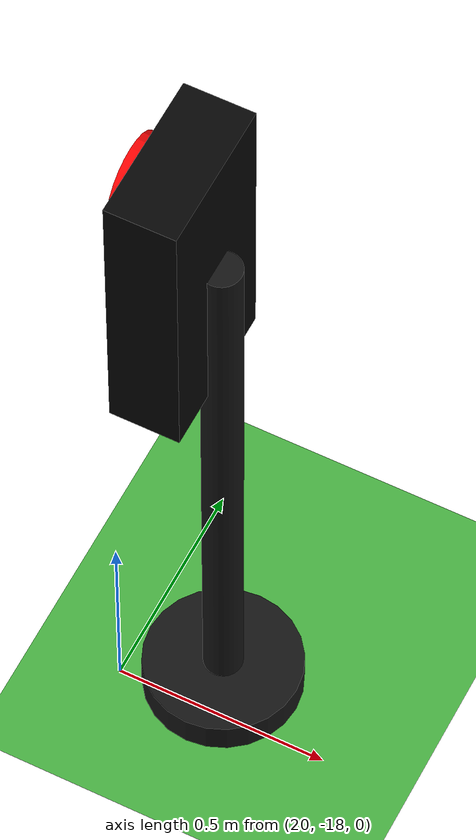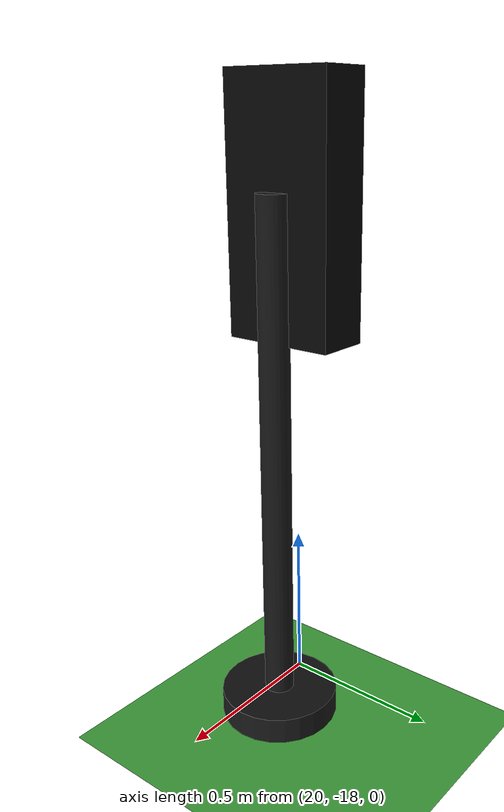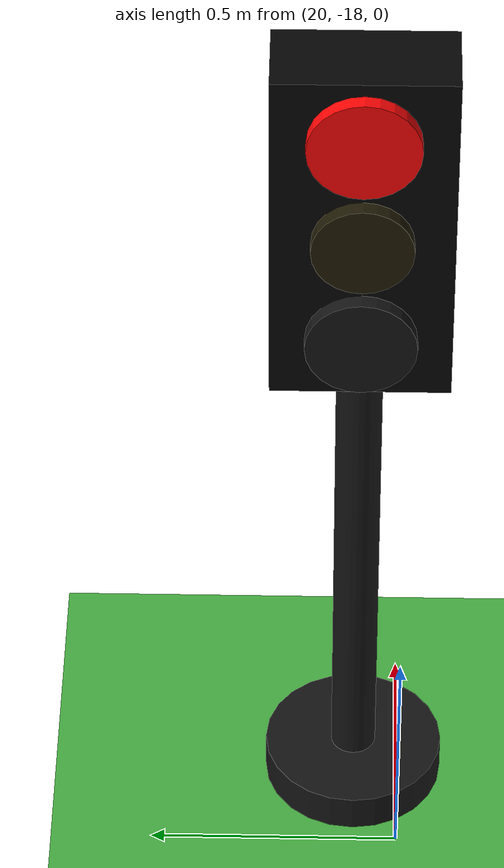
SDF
<sdf version="1.10">
 <world name="city_second">
  <model name="ground_plane">
   <static>true</static>
   <link name="link">
    <collision name="collision">
     <geometry><plane><normal>0 0 1</normal><size>45 46</size></plane></geometry>
    </collision>
    <visual name="visual">
     <geometry><plane><normal>0 0 1</normal><size>45 46</size></plane></geometry>
     <material>
      <ambient>0.280000001 0.689999998 0.25999999 1</ambient>
      <diffuse>0.280000001 0.689999998 0.25999999 1</diffuse>
      <specular>0.0299999993 0.0299999993 0.0299999993 1</specular>
     </material>
    </visual>
    <inertial>
     <mass>1</mass>
     <inertia><ixx>1</ixx><ixy>0</ixy><ixz>0</ixz><iyy>1</iyy><iyz>0</iyz><izz>1</izz></inertia>
    </inertial>
   </link>
   <pose>15.5 -11 0 0 0 0</pose>
  </model>
  <model name="simple_traffic_light_red_west_3">
   <static>true</static>
   <pose>20.210819927549061 -17.910705115010835 -2.7755575615628914e-17 0 0 1.570799967267172</pose>
   <link name="base">
    <pose>0 0 0.040000000000000001 0 0 0</pose>
    <collision name="collision">
     <geometry>
      <cylinder><radius>0.17999999999999999</radius><length>0.080000000000000002</length></cylinder>
     </geometry>
    </collision>
    <visual name="visual">
     <geometry>
      <cylinder><radius>0.17999999999999999</radius><length>0.080000000000000002</length></cylinder>
     </geometry>
     <material>
      <ambient>0.0799999982 0.0799999982 0.0799999982 1</ambient>
      <diffuse>0.0799999982 0.0799999982 0.0799999982 1</diffuse>
      <specular>0.150000006 0.150000006 0.150000006 1</specular>
      <emissive>0 0 0 1</emissive>
     </material>
    </visual>
    <inertial>
     <mass>1</mass>
     <inertia><ixx>1</ixx><ixy>0</ixy><ixz>0</ixz><iyy>1</iyy><iyz>0</iyz><izz>1</izz></inertia>
    </inertial>
   </link>
   <link name="pole">
    <pose>-1.4210854715202004e-14 -3.5527136788005009e-15 0.80000000000000004 0 0 3.3306690738754696e-16</pose>
    <collision name="collision">
     <geometry>
      <cylinder><radius>0.044999999999999998</radius><length>1.6000000000000001</length></cylinder>
     </geometry>
    </collision>
    <visual name="visual">
     <geometry>
      <cylinder><radius>0.044999999999999998</radius><length>1.6000000000000001</length></cylinder>
     </geometry>
     <material>
      <ambient>0.0799999982 0.0799999982 0.0799999982 1</ambient>
      <diffuse>0.0799999982 0.0799999982 0.0799999982 1</diffuse>
      <specular>0.150000006 0.150000006 0.150000006 1</specular>
      <emissive>0 0 0 1</emissive>
     </material>
    </visual>
    <inertial>
     <mass>1</mass>
     <inertia><ixx>1</ixx><ixy>0</ixy><ixz>0</ixz><iyy>1</iyy><iyz>0</iyz><izz>1</izz></inertia>
    </inertial>
   </link>
   <link name="signal_box">
    <pose>-1.7763568394002505e-14 0.0899999999999892 1.5500000000000003 0 0 3.3306690738754696e-16</pose>
    <collision name="collision">
     <geometry><box><size>0.34000000000000002 0.16 0.71999999999999997</size></box></geometry>
    </collision>
    <visual name="visual">
     <geometry><box><size>0.34000000000000002 0.16 0.71999999999999997</size></box></geometry>
     <material>
      <ambient>0.0199999996 0.0199999996 0.0199999996 1</ambient>
      <diffuse>0.0199999996 0.0199999996 0.0199999996 1</diffuse>
      <specular>0.150000006 0.150000006 0.150000006 1</specular>
      <emissive>0 0 0 1</emissive>
     </material>
    </visual>
    <inertial>
     <mass>1</mass>
     <inertia><ixx>1</ixx><ixy>0</ixy><ixz>0</ixz><iyy>1</iyy><iyz>0</iyz><izz>1</izz></inertia>
    </inertial>
   </link>
   <link name="red_lens">
    <pose>-2.1316282072803006e-14 0.18099999999999739 1.7800000000000002 1.5707963268 -3.1401849173114599e-16 -2.198129442158087e-15</pose>
    <collision name="collision">
     <geometry><cylinder><radius>0.105</radius><length>0.035000000000000003</length></cylinder></geometry>
    </collision>
    <visual name="visual">
     <geometry><cylinder><radius>0.105</radius><length>0.035000000000000003</length></cylinder></geometry>
     <material>
      <ambient>1 0.0199999996 0.0199999996 1</ambient>
      <diffuse>1 0.0199999996 0.0199999996 1</diffuse>
      <specular>0.150000006 0.150000006 0.150000006 1</specular>
      <emissive>1 0.0199999996 0.0199999996 1</emissive>
     </material>
    </visual>
    <inertial>
     <mass>1</mass>
     <inertia><ixx>1</ixx><ixy>0</ixy><ixz>0</ixz><iyy>1</iyy><iyz>0</iyz><izz>1</izz></inertia>
    </inertial>
   </link>
   <link name="yellow_lens">
    <pose>-1.7763568394002505e-14 0.18199999999999505 1.5500000000000003 1.5707963268 -3.1401849173114599e-16 -2.198129442158087e-15</pose>
    <collision name="collision">
     <geometry>
      <cylinder><radius>0.095000000000000001</radius><length>0.035000000000000003</length></cylinder>
     </geometry>
    </collision>
    <visual name="visual">
     <geometry>
      <cylinder><radius>0.095000000000000001</radius><length>0.035000000000000003</length></cylinder>
     </geometry>
     <material>
      <ambient>0.119999997 0.100000001 0.0199999996 1</ambient>
      <diffuse>0.119999997 0.100000001 0.0199999996 1</diffuse>
      <specular>0.150000006 0.150000006 0.150000006 1</specular>
      <emissive>0 0 0 1</emissive>
     </material>
    </visual>
    <inertial>
     <mass>1</mass>
     <inertia><ixx>1</ixx><ixy>0</ixy><ixz>0</ixz><iyy>1</iyy><iyz>0</iyz><izz>1</izz></inertia>
    </inertial>
   </link>
   <link name="green_lens">
    <pose>-3.5527136788005009e-15 0.18300000000000338 1.3199999999999998 1.5707963268 -3.1401849173114599e-16 -2.198129442158087e-15</pose>
    <collision name="collision">
     <geometry><cylinder><radius>0.105</radius><length>0.035000000000000003</length></cylinder></geometry>
    </collision>
    <visual name="visual">
     <geometry><cylinder><radius>0.105</radius><length>0.035000000000000003</length></cylinder></geometry>
     <material>
      <ambient>0.0799999982 0.0799999982 0.0799999982 1</ambient>
      <diffuse>0.0799999982 0.0799999982 0.0799999982 1</diffuse>
      <specular>0.150000006 0.150000006 0.150000006 1</specular>
      <emissive>0 0 0 1</emissive>
     </material>
    </visual>
    <inertial>
     <mass>1</mass>
     <inertia><ixx>1</ixx><ixy>0</ixy><ixz>0</ixz><iyy>1</iyy><iyz>0</iyz><izz>1</izz></inertia>
    </inertial>
   </link>
  </model>
 </world>
</sdf>
